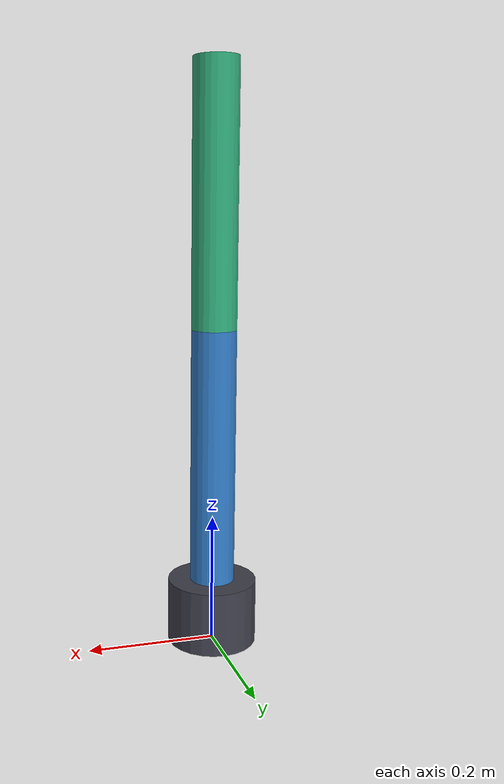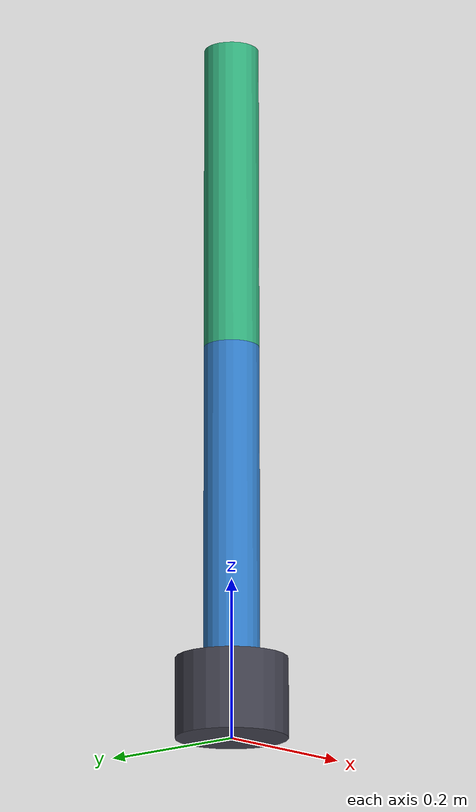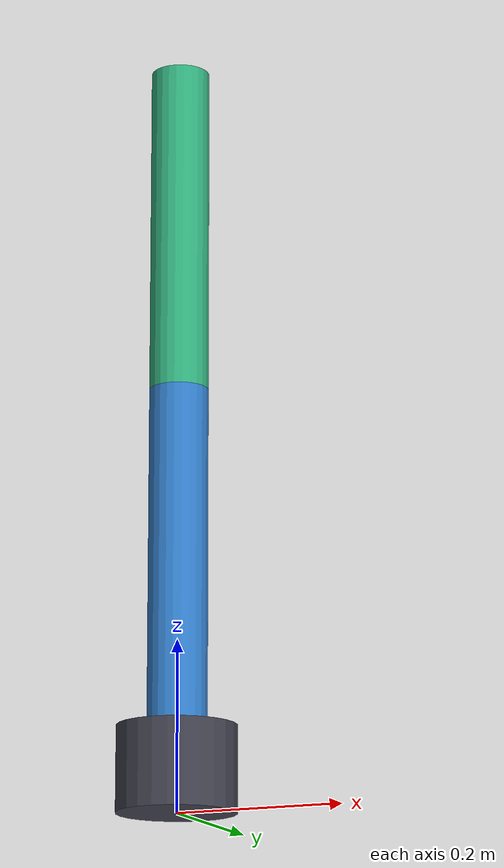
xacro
<?xml version="1.0"?>
<robot name="warehouse_bot" xmlns:xacro="http://ros.org/wiki/xacro">

  <xacro:property name="link_len" value="0.40"/>
  <xacro:property name="link_rad" value="0.035"/>

  <!-- Anchor the base to the world frame. -->
  <link name="world"/>

  <link name="base_link">
    <inertial>
      <mass value="10.0"/>
      <inertia ixx="0.05" ixy="0" ixz="0" iyy="0.05" iyz="0" izz="0.05"/>
    </inertial>
    <collision><geometry><cylinder radius="0.07" length="0.10"/></geometry></collision>
    <visual>
      <geometry><cylinder radius="0.07" length="0.10"/></geometry>
      <material name="base"><color rgba="0.25 0.25 0.30 1"/></material>
    </visual>
  </link>
  <joint name="fixed_base" type="fixed">
    <parent link="world"/>
    <child link="base_link"/>
    <origin xyz="0 0 0.05"/>
  </joint>

  <!-- A link is a cylinder along its local +z, with the joint at its base (z=0). -->
  <xacro:macro name="arm_link" params="name rgba">
    <link name="${name}">
      <inertial>
        <origin xyz="0 0 ${link_len/2}"/>
        <mass value="0.15"/>
        <inertia ixx="0.002" ixy="0" ixz="0" iyy="0.002" iyz="0" izz="0.0002"/>
      </inertial>
      <collision>
        <origin xyz="0 0 ${link_len/2}"/>
        <geometry><cylinder radius="${link_rad}" length="${link_len}"/></geometry>
      </collision>
      <visual>
        <origin xyz="0 0 ${link_len/2}"/>
        <geometry><cylinder radius="${link_rad}" length="${link_len}"/></geometry>
        <material name="${name}_mat"><color rgba="${rgba}"/></material>
      </visual>
    </link>
  </xacro:macro>

  <xacro:arm_link name="upper_arm" rgba="0.2 0.5 0.8 1"/>
  <xacro:arm_link name="forearm" rgba="0.2 0.7 0.5 1"/>

  <joint name="shoulder_joint" type="revolute">
    <parent link="base_link"/>
    <child link="upper_arm"/>
    <origin xyz="0 0 0.05"/>
    <axis xyz="0 1 0"/>
    <limit lower="-3.14" upper="3.14" effort="100" velocity="3.0"/>
  </joint>

  <joint name="elbow_joint" type="revolute">
    <parent link="upper_arm"/>
    <child link="forearm"/>
    <origin xyz="0 0 ${link_len}"/>
    <axis xyz="0 1 0"/>
    <limit lower="-3.14" upper="3.14" effort="100" velocity="3.0"/>
  </joint>

  <!-- End-effector tip frame at the end of the forearm. -->
  <link name="tip"/>
  <joint name="tip_joint" type="fixed">
    <parent link="forearm"/>
    <child link="tip"/>
    <origin xyz="0 0 ${link_len}"/>
  </joint>

  <gazebo>
    <plugin filename="gz-sim-joint-position-controller-system" name="gz::sim::systems::JointPositionController">
      <joint_name>shoulder_joint</joint_name>
      <topic>shoulder_cmd</topic>
      <p_gain>80</p_gain><i_gain>2.0</i_gain><d_gain>8.0</d_gain>
    </plugin>
    <plugin filename="gz-sim-joint-position-controller-system" name="gz::sim::systems::JointPositionController">
      <joint_name>elbow_joint</joint_name>
      <topic>elbow_cmd</topic>
      <p_gain>60</p_gain><i_gain>2.0</i_gain><d_gain>6.0</d_gain>
    </plugin>
    <plugin filename="gz-sim-joint-state-publisher-system" name="gz::sim::systems::JointStatePublisher">
      <topic>joint_states</topic>
    </plugin>
  </gazebo>

</robot>
